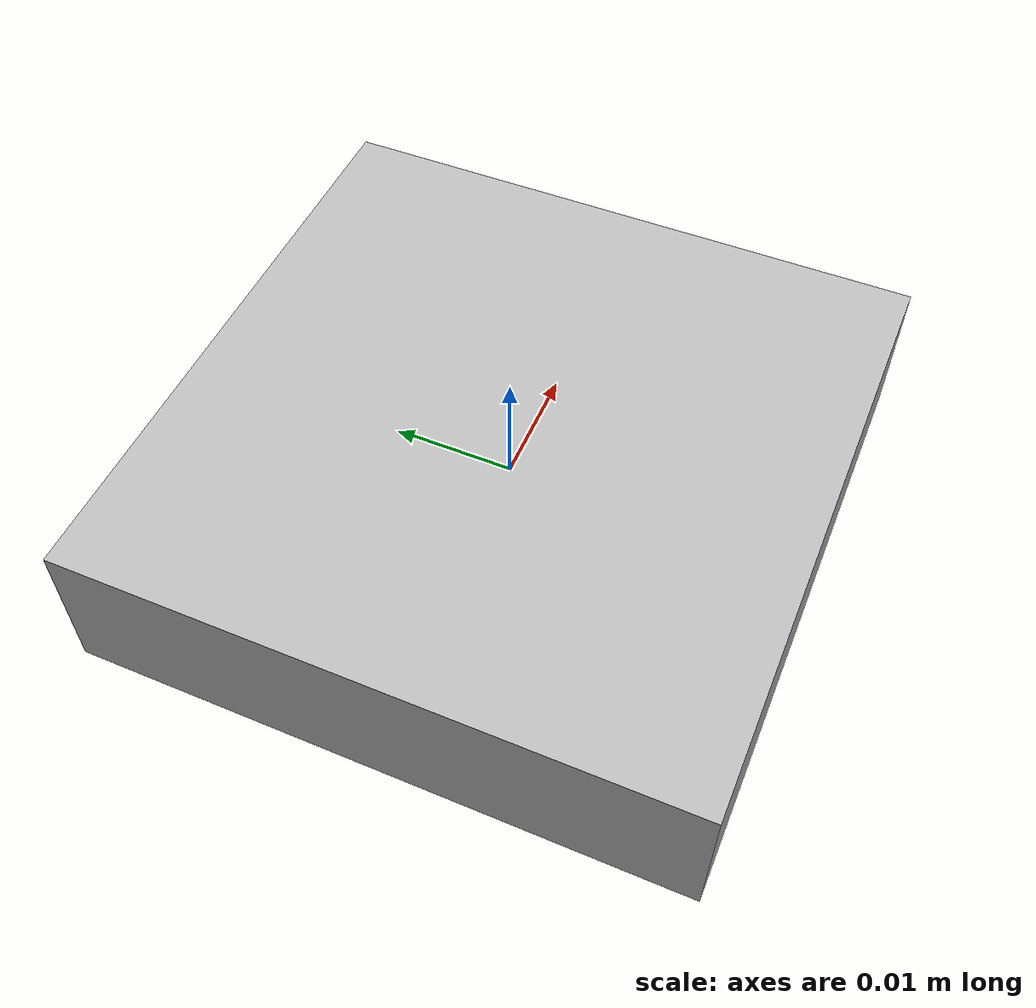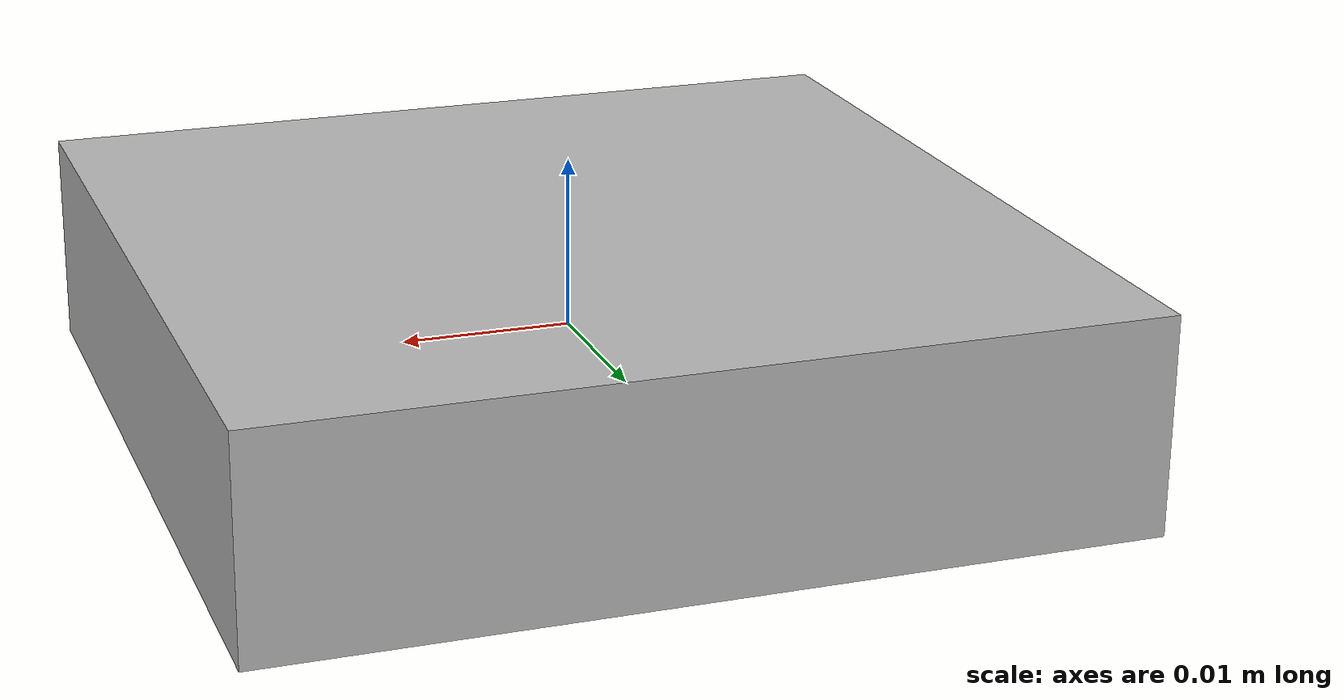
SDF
<?xml version="1.0" ?>
<sdf version="1.6">
  <model name="110015-3551284">
    <static>false</static>

    <link name="RightIMU">
      <inertial>
          <mass>0.01</mass>
        </inertial>

      <visual name="visual">
        <geometry>
          <box>
            <size>0.0508 0.0508 0.0127</size>
          </box>
        </geometry>
      </visual>
      <sensor name="right_imu" type="imu">
        <visualize>true</visualize>
        <imu>
          <angular_velocity>
            <x>
              <noise type="gaussian_quantized">
                <mean>0.0</mean>
                <stddev>0.014622</stddev>
                <precision>0.000598755</precision>
              </noise>
            </x>
            <y>
              <noise type="gaussian_quantized">
                <mean>0.0</mean>
                <stddev>0.015377</stddev>
                <precision>0.000598755</precision>
              </noise>
            </y>
            <z>
              <noise type="gaussian_quantized">
                <mean>0.0</mean>
                <stddev>0.022808</stddev>
                <precision>0.000598755</precision>
              </noise>
            </z>
          </angular_velocity>
          <linear_acceleration>
            <x>
              <noise type="gaussian_quantized">
                <mean>-0.029807</mean>
                <stddev>0.056973</stddev>
                <precision>0.122070313</precision>
              </noise>
            </x>
            <y>
              <noise type="gaussian_quantized">
                <mean>-0.047906</mean>
                <stddev>0.074346</stddev>
                <precision>0.122070313</precision>
              </noise>
            </y>
            <z>
              <noise type="gaussian_quantized">
                <mean>-0.036439</mean>
                <stddev>0.067145</stddev>
                <precision>0.122070313</precision>
              </noise>
            </z>
          </linear_acceleration>
        </imu>
        <always_on>1</always_on>
        <update_rate>50</update_rate>
      </sensor>
      <sensor name="right_imu_mag" type="magnetometer">
        <visualize>true</visualize>
        <magnetometer>
            <x>
              <noise type="gaussian_quantized">
                <mean>0.0</mean>
                <stddev>0.026309</stddev>
                <precision>0</precision>
              </noise>
            </x>
            <y>
              <noise type="gaussian_quantized">
                <mean>0.0</mean>
                <stddev>0.012666</stddev>
                <precision>0</precision>
              </noise>
            </y>
            <z>
              <noise type="gaussian_quantized">
                <mean>0.0</mean>
                <stddev>0.022808</stddev>
                <precision>0.012149</precision>
              </noise>
            </z>
        </magnetometer>
        <always_on>1</always_on>
        <update_rate>2</update_rate>
      </sensor>

    </link>
  </model>
</sdf>
